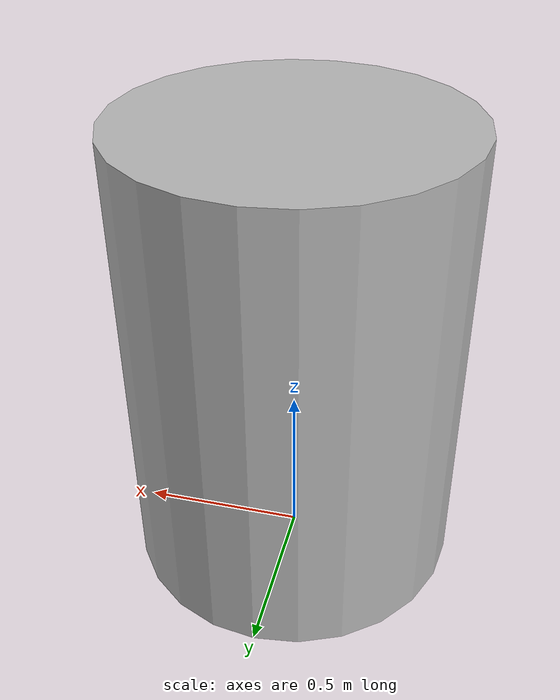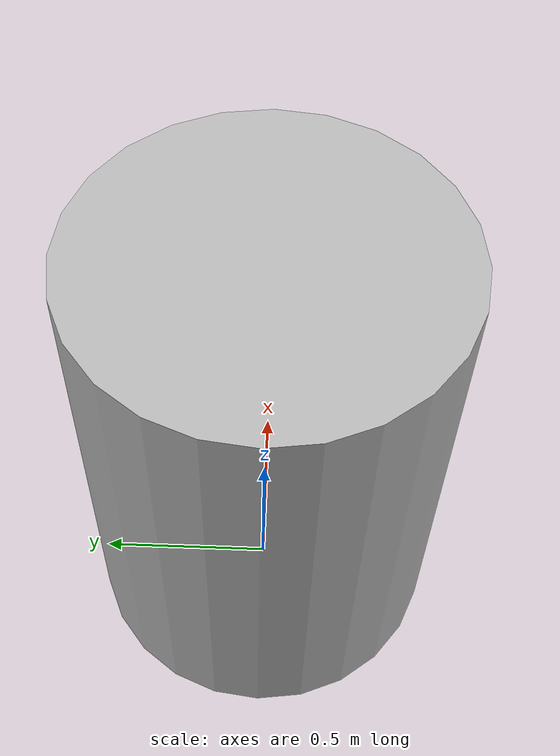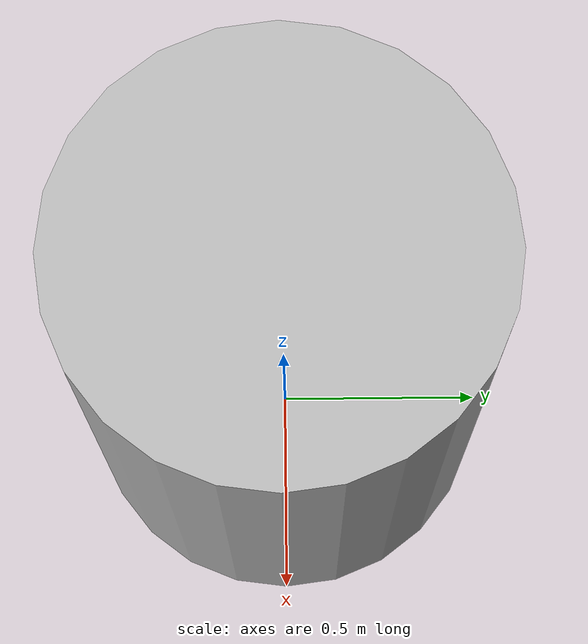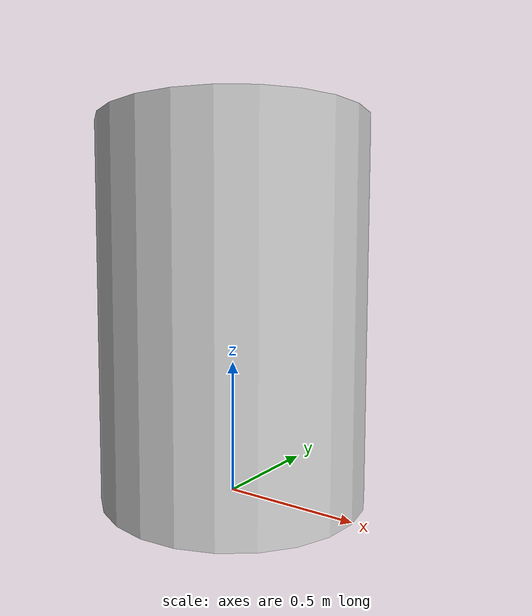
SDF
<?xml version='1.0'?>
<sdf version='1.4'>
  <model name="lgp_obstacle">
        <static>false</static>

	<link name='chassis'>
            <pose>0.0 0 0.69 0 0 0</pose>

	      <inertial>
		<mass>300.0</mass>
	      </inertial>

            <collision name='collision'>
              <geometry>
                <cylinder>
              	  <radius>0.5</radius>
              	  <length>1.39</length>
            	</cylinder>
              </geometry>

                  <surface>
		    <friction>
		      <ode>
		        <mu>1.0</mu>
		        <mu2>0</mu2>
		      </ode>
		    </friction>
		  </surface>

            </collision>

            <visual name='visual'>
              <geometry>
		<cylinder>
              	  <radius>0.5</radius>
              	  <length>1.39</length>
            	</cylinder>
              </geometry>
            </visual>
          </link>

  </model>
</sdf>
